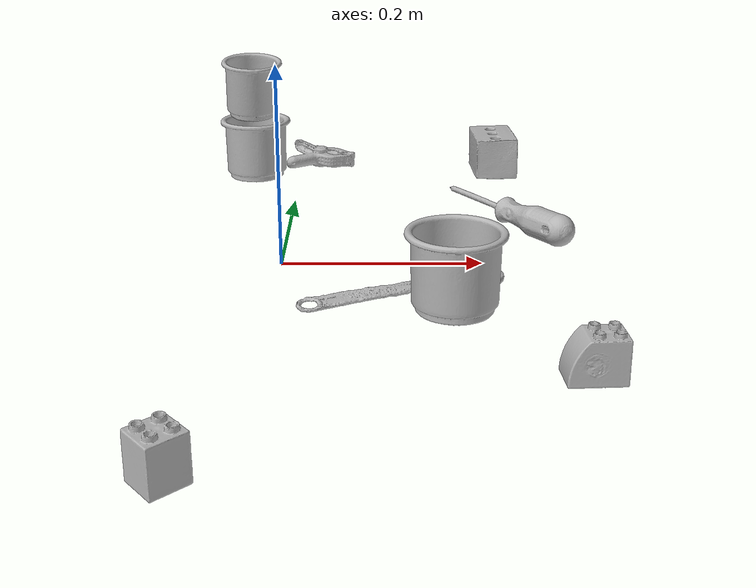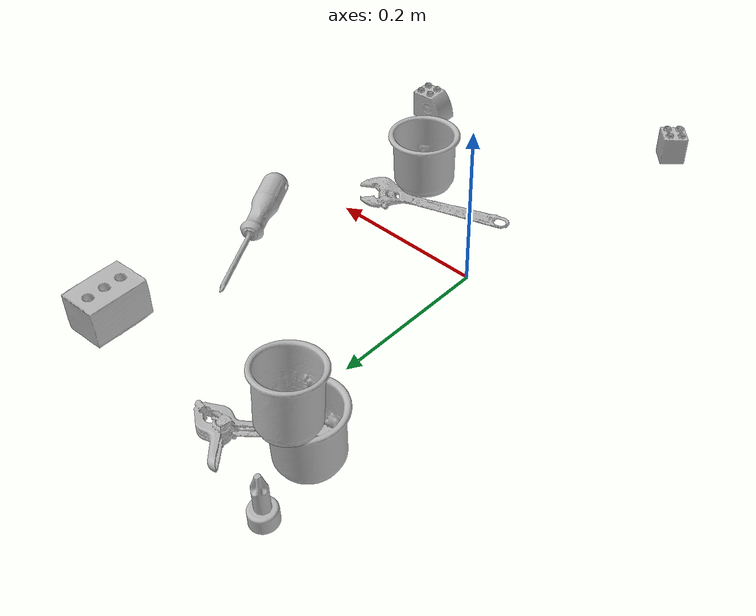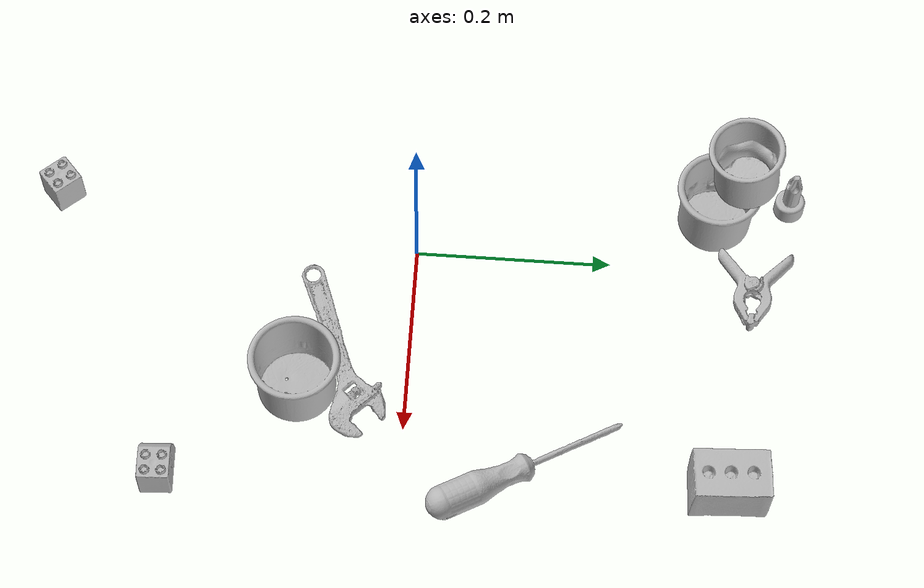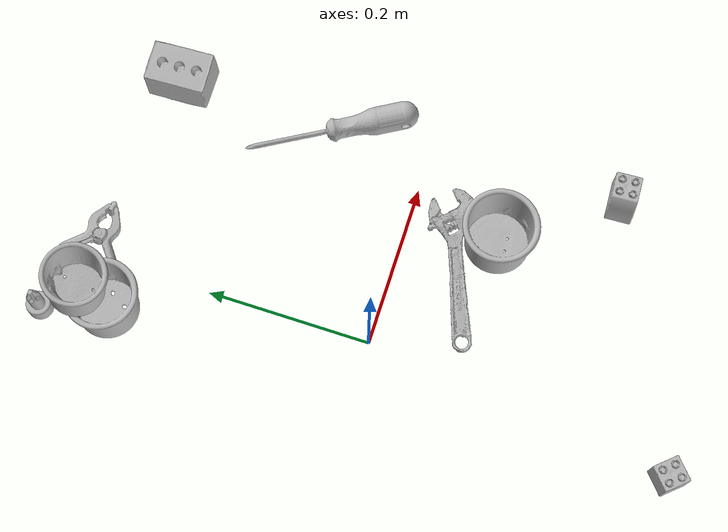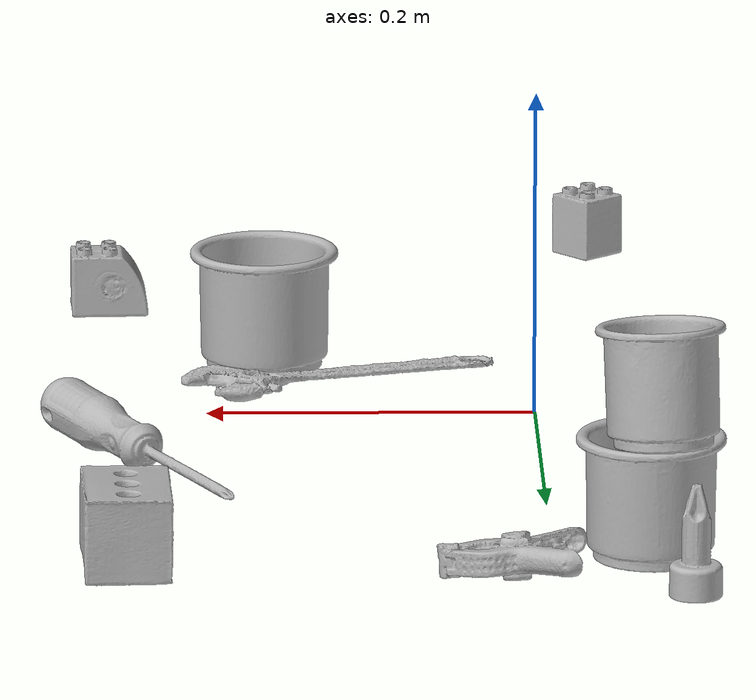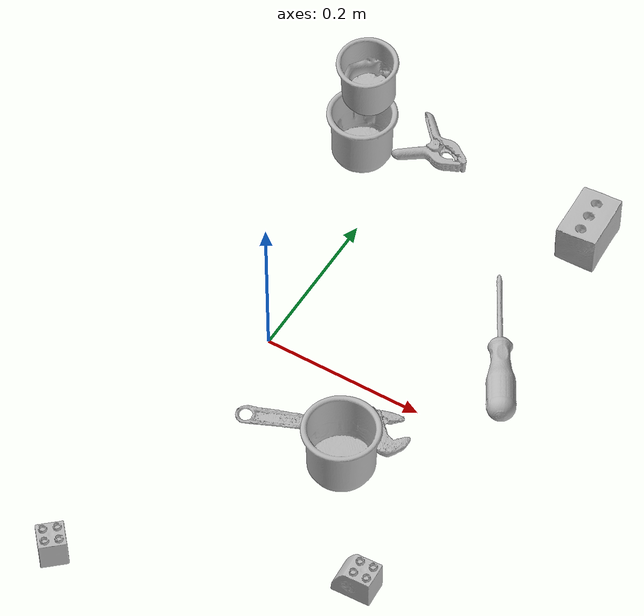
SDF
<sdf version="1.4">
  <world name="default">
    <light name="light1" type="point">
      <pose>0 0 1 0 0 0</pose>
      <diffuse>3 3 3 1</diffuse>
      <specular>3 3 3 1</specular>
    </light>
    <light name="light2" type="point">
      <pose>0 0.5 2 0 0 0</pose>
      <diffuse>1 1 1 1</diffuse>
      <specular>1 1 1 1</specular>
    </light>
    <light name="light3" type="point">
      <pose>0 0.5 2 0 0 0</pose>
      <diffuse>3 3 3 1</diffuse>
      <specular>3 3 3 1</specular>
    </light>
    <scene>
      <ambient>0.7 0.7 0.7</ambient>
    </scene>
    <model name="cup1">
      <link name="link_cup1">
        <collision name="default">
          <geometry>
            <mesh>
              <uri>model://h_cups/collision_meshes/collision.obj</uri>
              <scale>1.0 1.0 1.0</scale>
            </mesh>
          </geometry>
          <surface>
            <friction>
              <ode>
                <mu>0.5</mu>
                <mu2>0.5</mu2>
              </ode>
            </friction>
          <contact>
        <ode>
            <max_vel>0</max_vel>
            <min_depth>0.0001</min_depth>
            <kp>1e8</kp>
        </ode>
    </contact></surface>
        </collision>
        <visual name="default">
          <geometry>
            <mesh>
              <uri>model://h_cups/visual_meshes/visual.dae</uri>
              <scale>1.0 1.0 1.0</scale>
            </mesh>
          </geometry>
        </visual>
        <inertial>
          <mass>0.09017354249954224</mass>
          <pose>-2.702734127524309e-05 0.00023018653155304492 -0.0018405391601845622 -0.024362361674121313 0.06545247408237653 0.12884890922354367</pose>
          <inertia>
            <ixx>0.00011645493</ixx>
            <iyy>0.000115065246</iyy>
            <izz>0.00012212929</izz>
            <ixy>0</ixy>
            <ixz>0</ixz>
            <iyz>0</iyz>
          </inertia>
        </inertial>
      </link>
      <pose>0.16393691301345825 -0.10898128896951675 0.037757985293865204 2.2483532592209304e-07 -1.393090002809191e-08 1.5365309773505176</pose>
    </model>
    <model name="cup2">
      <link name="link_cup2">
        <collision name="default">
          <geometry>
            <mesh>
              <uri>model://g_cups/collision_meshes/collision.obj</uri>
              <scale>1.0 1.0 1.0</scale>
            </mesh>
          </geometry>
          <surface>
            <friction>
              <ode>
                <mu>0.5</mu>
                <mu2>0.5</mu2>
              </ode>
            </friction>
          <contact>
        <ode>
            <max_vel>0</max_vel>
            <min_depth>0.0001</min_depth>
            <kp>1e8</kp>
        </ode>
    </contact></surface>
        </collision>
        <visual name="default">
          <geometry>
            <mesh>
              <uri>model://g_cups/visual_meshes/visual.dae</uri>
              <scale>1.0 1.0 1.0</scale>
            </mesh>
          </geometry>
        </visual>
        <inertial>
          <mass>0.07892031967639923</mass>
          <pose>-0.0007946275873109698 -4.206384619465098e-05 -0.0021329368464648724 -0.21381953376637775 -0.31410844314425407 0.31119468358147234</pose>
          <inertia>
            <ixx>9.211769e-05</ixx>
            <iyy>9.180432e-05</iyy>
            <izz>9.541806e-05</izz>
            <ixy>0</ixy>
            <ixz>0</ixz>
            <iyz>0</iyz>
          </inertia>
        </inertial>
      </link>
      <pose>-0.05637602508068085 0.305817574262619 0.03720613941550255 -8.6225405252665e-05 0.00024527798591263345 0.9263269664663439</pose>
    </model>
    <model name="cup3">
      <link name="link_cup3">
        <collision name="default">
          <geometry>
            <mesh>
              <uri>model://e_cups/collision_meshes/collision.obj</uri>
              <scale>1.0 1.0 1.0</scale>
            </mesh>
          </geometry>
          <surface>
            <friction>
              <ode>
                <mu>0.5</mu>
                <mu2>0.5</mu2>
              </ode>
            </friction>
          <contact>
        <ode>
            <max_vel>0</max_vel>
            <min_depth>0.0001</min_depth>
            <kp>1e8</kp>
        </ode>
    </contact></surface>
        </collision>
        <visual name="default">
          <geometry>
            <mesh>
              <uri>model://e_cups/visual_meshes/visual.dae</uri>
              <scale>1.0 1.0 1.0</scale>
            </mesh>
          </geometry>
        </visual>
        <inertial>
          <mass>0.08743876963853836</mass>
          <pose>0.0011355745373293757 0.0028797851409763098 -0.0038829741533845663 0.6952398618358687 0.08767880823198544 -0.5235243888876825</pose>
          <inertia>
            <ixx>7.709911e-05</ixx>
            <iyy>8.05796e-05</iyy>
            <izz>7.3715666e-05</izz>
            <ixy>0</ixy>
            <ixz>0</ixz>
            <iyz>0</iyz>
          </inertia>
        </inertial>
      </link>
      <pose>-0.061246272176504135 0.3274323046207428 0.10920805484056473 -0.0028573086052159115 -0.12206473808832066 1.833416432021701</pose>
    </model>
    <model name="toy1">
      <link name="link_toy1">
        <collision name="default">
          <geometry>
            <mesh>
              <uri>model://d_lego_duplo/collision_meshes/collision.obj</uri>
              <scale>1.0 1.0 1.0</scale>
            </mesh>
          </geometry>
          <surface>
            <friction>
              <ode>
                <mu>0.5</mu>
                <mu2>0.5</mu2>
              </ode>
            </friction>
          <contact>
        <ode>
            <max_vel>0</max_vel>
            <min_depth>0.0001</min_depth>
            <kp>1e8</kp>
        </ode>
    </contact></surface>
        </collision>
        <visual name="default">
          <geometry>
            <mesh>
              <uri>model://d_lego_duplo/visual_meshes/visual.dae</uri>
              <scale>1.0 1.0 1.0</scale>
            </mesh>
          </geometry>
        </visual>
        <inertial>
          <mass>0.04292278364300728</mass>
          <pose>0.002830562647432089 0.00016366151976399124 0.0008589805802330375 0.08010895821025366 -0.3835521883517419 0.0010296961053417666</pose>
          <inertia>
            <ixx>8.309218e-06</ixx>
            <iyy>1.1793034e-05</iyy>
            <izz>1.1372727e-05</izz>
            <ixy>0</ixy>
            <ixz>0</ixz>
            <iyz>0</iyz>
          </inertia>
        </inertial>
      </link>
      <pose>0.2612282335758209 -0.23846565186977386 0.021739868447184563 -4.5462174910596125e-05 -2.3965587773619817e-05 0.048970086436473874</pose>
    </model>
    <model name="toy2">
      <link name="link_toy2">
        <collision name="default">
          <geometry>
            <mesh>
              <uri>model://foam_brick/collision_meshes/collision.obj</uri>
              <scale>1.0 1.0 1.0</scale>
            </mesh>
          </geometry>
          <surface>
            <friction>
              <ode>
                <mu>0.5</mu>
                <mu2>0.5</mu2>
              </ode>
            </friction>
          <contact>
        <ode>
            <max_vel>0</max_vel>
            <min_depth>0.0001</min_depth>
            <kp>1e8</kp>
        </ode>
    </contact></surface>
        </collision>
        <visual name="default">
          <geometry>
            <mesh>
              <uri>model://foam_brick/visual_meshes/visual.dae</uri>
              <scale>1.0 1.0 1.0</scale>
            </mesh>
          </geometry>
        </visual>
        <inertial>
          <mass>0.21218973398208618</mass>
          <pose>-0.0002522472059354186 0.00034584320383146405 -0.0002532101352699101 -0.2940188212014215 0.017274433063530492 -0.0007449861184219897</pose>
          <inertia>
            <ixx>9.268843e-05</ixx>
            <iyy>0.00014798183</iyy>
            <izz>0.00014986254</izz>
            <ixy>0</ixy>
            <ixz>0</ixz>
            <iyz>0</iyz>
          </inertia>
        </inertial>
      </link>
      <pose>0.2463693767786026 0.32135143876075745 0.025922788307070732 0.013417034402486702 0.004152393755283567 -1.5265365067571917</pose>
    </model>
    <model name="toy3">
      <link name="link_toy3">
        <collision name="default">
          <geometry>
            <mesh>
              <uri>model://f_lego_duplo/collision_meshes/collision.obj</uri>
              <scale>1.0 1.0 1.0</scale>
            </mesh>
          </geometry>
          <surface>
            <friction>
              <ode>
                <mu>0.5</mu>
                <mu2>0.5</mu2>
              </ode>
            </friction>
          <contact>
        <ode>
            <max_vel>0</max_vel>
            <min_depth>0.0001</min_depth>
            <kp>1e8</kp>
        </ode>
    </contact></surface>
        </collision>
        <visual name="default">
          <geometry>
            <mesh>
              <uri>model://f_lego_duplo/visual_meshes/visual.dae</uri>
              <scale>1.0 1.0 1.0</scale>
            </mesh>
          </geometry>
        </visual>
        <inertial>
          <mass>0.024021470919251442</mass>
          <pose>2.3694197807344608e-05 0.00013393140397965908 0.0018837875686585903 0.02983869554967358 -0.014424868856459862 -0.6756716113514201</pose>
          <inertia>
            <ixx>5.075869e-06</ixx>
            <iyy>5.1210886e-06</iyy>
            <izz>4.4060694e-06</izz>
            <ixy>0</ixy>
            <ixz>0</ixz>
            <iyz>0</iyz>
          </inertia>
        </inertial>
      </link>
      <pose>-0.047039370983839035 -0.3742913007736206 0.021870998665690422 2.0355199826135183e-06 1.368008424566524e-06 2.29541639655749</pose>
    </model>
    <model name="toy4">
      <link name="link_toy4">
        <collision name="default">
          <geometry>
            <mesh>
              <uri>model://d_toy_airplane/collision_meshes/collision.obj</uri>
              <scale>1.0 1.0 1.0</scale>
            </mesh>
          </geometry>
          <surface>
            <friction>
              <ode>
                <mu>0.5</mu>
                <mu2>0.5</mu2>
              </ode>
            </friction>
          <contact>
        <ode>
            <max_vel>0</max_vel>
            <min_depth>0.0001</min_depth>
            <kp>1e8</kp>
        </ode>
    </contact></surface>
        </collision>
        <visual name="default">
          <geometry>
            <mesh>
              <uri>model://d_toy_airplane/visual_meshes/visual.dae</uri>
              <scale>1.0 1.0 1.0</scale>
            </mesh>
          </geometry>
        </visual>
        <inertial>
          <mass>0.024586454033851624</mass>
          <pose>9.410288475919515e-05 -5.809331560158171e-05 -0.011728096753358841 0.0002662237897190017 0.004679022855495211 0.5193045098973154</pose>
          <inertia>
            <ixx>7.370539e-06</ixx>
            <iyy>7.376099e-06</iyy>
            <izz>2.2252145e-06</izz>
            <ixy>0</ixy>
            <ixz>0</ixz>
            <iyz>0</iyz>
          </inertia>
        </inertial>
      </link>
      <pose>-0.07844166457653046 0.38449183106422424 0.03333871811628342 0.00011124686511492143 -8.185718061861738e-05 -3.141274846189244</pose>
    </model>
    <model name="hardware1">
      <link name="link_hardware1">
        <collision name="default">
          <geometry>
            <mesh>
              <uri>model://phillips_screwdriver/collision_meshes/collision.obj</uri>
              <scale>1.0 1.0 1.0</scale>
            </mesh>
          </geometry>
          <surface>
            <friction>
              <ode>
                <mu>0.5</mu>
                <mu2>0.5</mu2>
              </ode>
            </friction>
          <contact>
        <ode>
            <max_vel>0</max_vel>
            <min_depth>0.0001</min_depth>
            <kp>1e8</kp>
        </ode>
    </contact></surface>
        </collision>
        <visual name="default">
          <geometry>
            <mesh>
              <uri>model://phillips_screwdriver/visual_meshes/visual.dae</uri>
              <scale>1.0 1.0 1.0</scale>
            </mesh>
          </geometry>
        </visual>
        <inertial>
          <mass>0.10962587594985962</mass>
          <pose>-0.04777182266116142 0.0010362300090491772 -0.00045555492397397757 -0.1572763288958183 0.005850995451121224 -0.002156747064170485</pose>
          <inertia>
            <ixx>1.2879916e-05</ixx>
            <iyy>0.00016149164</iyy>
            <izz>0.00016162884</izz>
            <ixy>0</ixy>
            <ixz>0</ixz>
            <iyz>0</iyz>
          </inertia>
        </inertial>
      </link>
      <pose>0.24042341113090515 0.12174858897924423 0.015409674495458603 0.06561940102749739 0.0375676335419193 2.090741427661117</pose>
    </model>
    <model name="hardware2">
      <link name="link_hardware2">
        <collision name="default">
          <geometry>
            <mesh>
              <uri>model://adjustable_wrench/collision_meshes/collision.obj</uri>
              <scale>1.0 1.0 1.0</scale>
            </mesh>
          </geometry>
          <surface>
            <friction>
              <ode>
                <mu>0.5</mu>
                <mu2>0.5</mu2>
              </ode>
            </friction>
          <contact>
        <ode>
            <max_vel>0</max_vel>
            <min_depth>0.0001</min_depth>
            <kp>1e8</kp>
        </ode>
    </contact></surface>
        </collision>
        <visual name="default">
          <geometry>
            <mesh>
              <uri>model://adjustable_wrench/visual_meshes/visual.dae</uri>
              <scale>1.0 1.0 1.0</scale>
            </mesh>
          </geometry>
        </visual>
        <inertial>
          <mass>0.02999398298561573</mass>
          <pose>0.03740980848670006 -0.002896887483075261 -0.001114922808483243 -0.014473357351062987 0.006656019865341655 -0.010954188906160397</pose>
          <inertia>
            <ixx>6.138701e-06</ixx>
            <iyy>7.184631e-05</iyy>
            <izz>7.765895e-05</izz>
            <ixy>0</ixy>
            <ixz>0</ixz>
            <iyz>0</iyz>
          </inertia>
        </inertial>
      </link>
      <pose>0.12030712515115738 -0.06894665956497192 0.006125056184828281 0.04675728429659499 -0.029270665712102163 0.349508421524522</pose>
    </model>
    <model name="hardware3">
      <link name="link_hardware3">
        <collision name="default">
          <geometry>
            <mesh>
              <uri>model://medium_clamp/collision_meshes/collision.obj</uri>
              <scale>1.0 1.0 1.0</scale>
            </mesh>
          </geometry>
          <surface>
            <friction>
              <ode>
                <mu>0.5</mu>
                <mu2>0.5</mu2>
              </ode>
            </friction>
          <contact>
        <ode>
            <max_vel>0</max_vel>
            <min_depth>0.0001</min_depth>
            <kp>1e8</kp>
        </ode>
    </contact></surface>
        </collision>
        <visual name="default">
          <geometry>
            <mesh>
              <uri>model://medium_clamp/visual_meshes/visual.dae</uri>
              <scale>1.0 1.0 1.0</scale>
            </mesh>
          </geometry>
        </visual>
        <inertial>
          <mass>0.038817502558231354</mass>
          <pose>0.005390993785113096 0.0003953237028326839 -0.0001222158462041989 -0.0012269117309439718 0.002584502422387493 0.03820772500943274</pose>
          <inertia>
            <ixx>1.05752815e-05</ixx>
            <iyy>1.539003e-05</iyy>
            <izz>2.3705257e-05</izz>
            <ixy>0</ixy>
            <ixz>0</ixz>
            <iyz>0</iyz>
          </inertia>
        </inertial>
      </link>
      <pose>0.02192346192896366 0.3462185263633728 0.013533002696931362 0.07735482962885415 0.08537503421815412 -0.0716249257832936</pose>
    </model>
  <physics type="ode">
      <max_contacts>50</max_contacts>
      <ode>
        <solver>
          <type>quick</type>
          <iters>75</iters>
        </solver>
        <constraints>
          <contact_max_correcting_vel>0</contact_max_correcting_vel>
          <contact_surface_layer>0</contact_surface_layer>
        </constraints>
      </ode>
    </physics></world>
</sdf>
